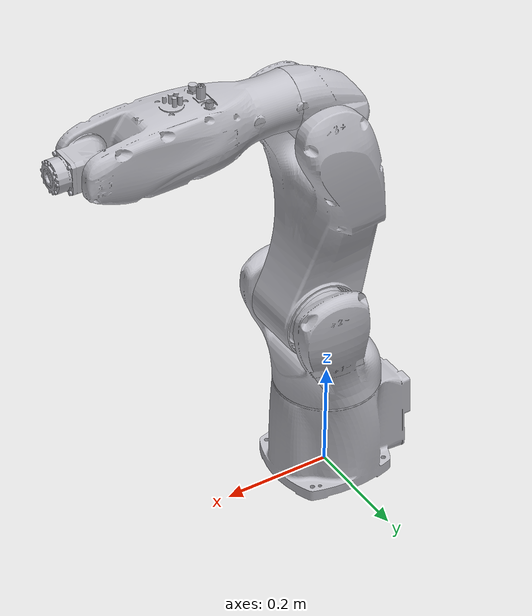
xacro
<?xml version="1.0" ?>
<robot name="comau_racer5_080"
  xmlns:xacro="http://www.ros.org/wiki/xacro">
  <xacro:property name="package_name" value="comau_racer5_080_description"/>

  <xacro:include filename="$(find ${package_name})/urdf/materials.xacro" />
  <xacro:include filename="$(find ${package_name})/urdf/comau_racer5_080.trans" />
  <xacro:include filename="$(find ${package_name})/urdf/comau_racer5_080.gazebo" />

  <xacro:property name="r2d" value="${pi/180}"/>

  <link name="world"></link>

  <link name="base_link">
    <inertial>
      <origin xyz="-0.016692489178242783 5.830304988232292e-05 0.14349325387743003" rpy="0 0 0"/>
      <mass value="8.022239032516847"/>
      <inertia ixx="0.07056" iyy="0.085056" izz="0.055168" ixy="4.9e-05" iyz="6e-06" ixz="-0.006227"/>
    </inertial>
    <visual>
      <origin xyz="0 0 0" rpy="0 0 0"/>
      <geometry>
        <mesh filename="package://${package_name}/meshes/base_link.stl"/>
      </geometry>
      <material name="silver"/>
    </visual>
    <collision>
      <origin xyz="0 0 0" rpy="0 0 0"/>
      <geometry>
        <mesh filename="package://${package_name}/meshes/base_link.stl"/>
      </geometry>
    </collision>
  </link>

  <link name="q1_link_1">
    <inertial>
      <origin xyz="0.037606654842059155 -0.004628236516859879 0.12025910762626352" rpy="0 0 0"/>
      <mass value="7.638878272413433"/>
      <inertia ixx="0.078999" iyy="0.046955" izz="0.062497" ixy="0.000136" iyz="1.9e-05" ixz="-0.00591"/>
    </inertial>
    <visual>
      <origin xyz="-0.0 -0.0 -0.1885" rpy="0 0 0"/>
      <geometry>
        <mesh filename="package://${package_name}/meshes/q1_link_1.stl"/>
      </geometry>
      <material name="silver"/>
    </visual>
    <collision>
      <origin xyz="-0.0 -0.0 -0.1885" rpy="0 0 0"/>
      <geometry>
        <mesh filename="package://${package_name}/meshes/q1_link_1.stl"/>
      </geometry>
    </collision>
  </link>

  <link name="q2_link_1">
    <inertial>
      <origin xyz="-0.010122139068402626 -0.0010609195189776115 0.10601610344187634" rpy="0 0 0"/>
      <mass value="9.757740873886663"/>
      <inertia ixx="0.235859" iyy="0.223176" izz="0.046353" ixy="-9.1e-05" iyz="0.008179" ixz="0.007925"/>
    </inertial>
    <visual>
      <origin xyz="-0.05 0.0005 -0.364" rpy="0 0 0"/>
      <geometry>
        <mesh filename="package://${package_name}/meshes/q2_link_1.stl"/>
      </geometry>
      <material name="silver"/>
    </visual>
    <collision>
      <origin xyz="-0.05 0.0005 -0.364" rpy="0 0 0"/>
      <geometry>
        <mesh filename="package://${package_name}/meshes/q2_link_1.stl"/>
      </geometry>
    </collision>
  </link>

  <link name="q3_link_1">
    <inertial>
      <origin xyz="-0.007324723296943267 -0.007391213542488869 0.017803107927468087" rpy="0 0 0"/>
      <mass value="3.740262261115742"/>
      <inertia ixx="0.008141" iyy="0.009772" izz="0.009099" ixy="2e-06" iyz="-0.000524" ixz="-0.002221"/>
    </inertial>
    <visual>
      <origin xyz="-0.05 0.0005 -0.734" rpy="0 0 0"/>
      <geometry>
        <mesh filename="package://${package_name}/meshes/q3_link_1.stl"/>
      </geometry>
      <material name="silver"/>
    </visual>
    <collision>
      <origin xyz="-0.05 0.0005 -0.734" rpy="0 0 0"/>
      <geometry>
        <mesh filename="package://${package_name}/meshes/q3_link_1.stl"/>
      </geometry>
    </collision>
  </link>

  <link name="q4_link_1">
    <inertial>
      <origin xyz="0.2353593069196668 0.0 0.0" rpy="0 0 0"/>
      <mass value="1.7488722435466972"/>
      <inertia ixx="0.004495" iyy="0.030823" izz="0.03138" ixy="0.0" iyz="0.0" ixz="0.0"/>
    </inertial>
    <visual>
      <origin xyz="-0.0905 0.0005 -0.783998" rpy="0 0 0"/>
      <geometry>
        <mesh filename="package://${package_name}/meshes/q4_link_1.stl"/>
      </geometry>
      <material name="silver"/>
    </visual>
    <collision>
      <origin xyz="-0.0905 0.0005 -0.783998" rpy="0 0 0"/>
      <geometry>
        <mesh filename="package://${package_name}/meshes/q4_link_1.stl"/>
      </geometry>
    </collision>
  </link>

  <link name="q5_link_1">
    <inertial>
      <origin xyz="0.027292159537539107 0.0013712897030821692 -5.1641371843214046e-06" rpy="0 0 0"/>
      <mass value="0.5620704849356615"/>
      <inertia ixx="0.000551" iyy="0.001042" izz="0.001076" ixy="0.0" iyz="0.0" ixz="-0.0"/>
    </inertial>
    <visual>
      <origin xyz="-0.4355 0.0005 -0.783998" rpy="0 0 0"/>
      <geometry>
        <mesh filename="package://${package_name}/meshes/q5_link_1.stl"/>
      </geometry>
      <material name="silver"/>
    </visual>
    <collision>
      <origin xyz="-0.4355 0.0005 -0.783998" rpy="0 0 0"/>
      <geometry>
        <mesh filename="package://${package_name}/meshes/q5_link_1.stl"/>
      </geometry>
    </collision>
  </link>

  <link name="q6_link_1">
    <inertial>
      <origin xyz="0.0040723327362690576 -2.0433994003433856e-06 -0.00012905570870358485" rpy="0 0 0"/>
      <mass value="0.0220357559368793"/>
      <inertia ixx="3e-06" iyy="2e-06" izz="2e-06" ixy="0.0" iyz="0.0" ixz="0.0"/>
    </inertial>
    <visual>
      <origin xyz="-0.5065 0.0005 -0.783998" rpy="0 0 0"/>
      <geometry>
        <mesh filename="package://${package_name}/meshes/q6_link_1.stl"/>
      </geometry>
      <material name="silver"/>
    </visual>
    <collision>
      <origin xyz="-0.5065 0.0005 -0.783998" rpy="0 0 0"/>
      <geometry>
        <mesh filename="package://${package_name}/meshes/q6_link_1.stl"/>
      </geometry>
    </collision>
  </link>

  <joint name="base_joint" type="fixed">
      <origin xyz="0 0 0" rpy="0 0 0"/>
      <parent link="world"/>
      <child link="base_link"/>
  </joint>

  <joint name="q1_joint" type="revolute">
    <origin xyz="0.0 0.0 0.1885" rpy="0 0 0"/>
    <parent link="base_link"/>
    <child link="q1_link_1"/>
    <axis xyz="-0.0 -0.0 -1.0"/>
    <limit lower="-${r2d*170}" upper="${r2d*170}" effort="0.0" velocity="${r2d*400}"/>
    <dynamics damping="0.001" friction="0.001"/>
  </joint>

  <joint name="q2_joint" type="revolute">
    <origin xyz="0.05 -0.0005 0.1755" rpy="0 0 0"/>
    <parent link="q1_link_1"/>
    <child link="q2_link_1"/>
    <axis xyz="0.0 1.0 -0.0"/>
    <limit lower="-${r2d*85}" upper="${r2d*135}" effort="0.0" velocity="${r2d*360}"/>
    <dynamics damping="0.001" friction="0.001"/>
  </joint>

  <joint name="q3_joint" type="revolute">
    <origin xyz="0.0 0.0 0.37" rpy="0 0 0"/>
    <parent link="q2_link_1"/>
    <child link="q3_link_1"/>
    <axis xyz="-0.0 1.0 -0.0"/>
    <limit lower="-${r2d*155}" upper="${r2d*90}" effort="0.0" velocity="${r2d*400}"/>
    <dynamics damping="0.001" friction="0.001"/>
  </joint>

  <joint name="q4_joint" type="revolute">
    <origin xyz="0.0405 0.0 0.049998" rpy="0 0 0"/>
    <parent link="q3_link_1"/>
    <child link="q4_link_1"/>
    <axis xyz="1.0 0.0 0.0"/>
    <limit lower="-${r2d*200}" upper="${r2d*200}" effort="0.0" velocity="${r2d*500}"/>
    <dynamics damping="0.001" friction="0.001"/>
  </joint>

  <joint name="q5_joint" type="revolute">
    <origin xyz="0.345 0.0 0.0" rpy="0 0 0"/>
    <parent link="q4_link_1"/>
    <child link="q5_link_1"/>
    <axis xyz="0.0 1.0 -0.0"/>
    <limit lower="-${r2d*125}" upper="${r2d*125}" effort="0.0" velocity="${r2d*500}"/>
    <dynamics damping="0.001" friction="0.001"/>
  </joint>

  <joint name="q6_joint" type="revolute">
    <origin xyz="0.071 0.0 0.0" rpy="0 0 0"/>
    <parent link="q5_link_1"/>
    <child link="q6_link_1"/>
    <axis xyz="1.0 -0.0 0.0"/>
    <limit lower="-${r2d*2700}" upper="${r2d*2700}" effort="0.0" velocity="${r2d*800}"/>
    <dynamics damping="0.001" friction="0.001"/>
  </joint>

  <!-- This plugin will read a JointTrajectory message from the /set_joint_trajectory topic
        and move the machine accordingly. It's a bit clunky but it works. -->

</robot>

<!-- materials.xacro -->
<robot xmlns:xacro="http://www.ros.org/wiki/xacro">

  <material name="black">
    <color rgba="0.0 0.0 0.0 1.0"/>
  </material>

  <material name="blue">
    <color rgba="0.0 0.0 0.8 1.0"/>
  </material>

  <material name="green">
    <color rgba="0.0 1.0 0.0 1.0"/>
  </material>

  <material name="grey">
    <color rgba="0.2 0.2 0.2 1.0"/>
  </material>

  <material name="orange">
    <color rgba="${255/255} ${108/255} ${10/255} 1.0"/>
  </material>

  <material name="brown">
    <color rgba="${222/255} ${207/255} ${195/255} 1.0"/>
  </material>

  <material name="red">
    <color rgba="0.8 0.0 0.0 1.0"/>
  </material>

  <material name="white">
    <color rgba="1.0 1.0 1.0 1.0"/>
  </material>

</robot>

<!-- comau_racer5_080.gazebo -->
<robot name="comau_racer5_080" xmlns:xacro="http://www.ros.org/wiki/xacro" >

<xacro:property name="body_color" value="Gazebo/Silver" />

<gazebo reference="base_link">
  <material>${body_color}</material>
  <mu1>0.2</mu1>
  <mu2>0.2</mu2>
  <selfCollide>true</selfCollide>
  <gravity>true</gravity>
</gazebo>

<gazebo reference="q1_link_1">
  <material>${body_color}</material>
  <mu1>0.2</mu1>
  <mu2>0.2</mu2>
  <selfCollide>true</selfCollide>
</gazebo>

<gazebo reference="q2_link_1">
  <material>${body_color}</material>
  <mu1>0.2</mu1>
  <mu2>0.2</mu2>
  <selfCollide>true</selfCollide>
</gazebo>

<gazebo reference="q3_link_1">
  <material>${body_color}</material>
  <mu1>0.2</mu1>
  <mu2>0.2</mu2>
  <selfCollide>true</selfCollide>
</gazebo>

<gazebo reference="q6_link_1">
  <material>${body_color}</material>
  <mu1>0.2</mu1>
  <mu2>0.2</mu2>
  <selfCollide>true</selfCollide>
</gazebo>

<gazebo reference="q4_link_1">
  <material>${body_color}</material>
  <mu1>0.2</mu1>
  <mu2>0.2</mu2>
  <selfCollide>true</selfCollide>
</gazebo>

<gazebo reference="q5_link_1">
  <material>${body_color}</material>
  <mu1>0.2</mu1>
  <mu2>0.2</mu2>
  <selfCollide>true</selfCollide>
</gazebo>

</robot>
